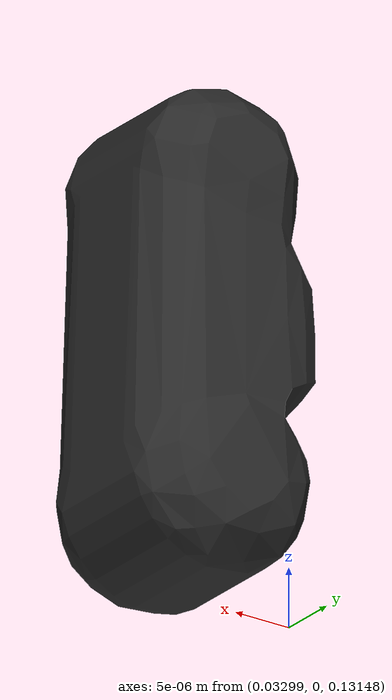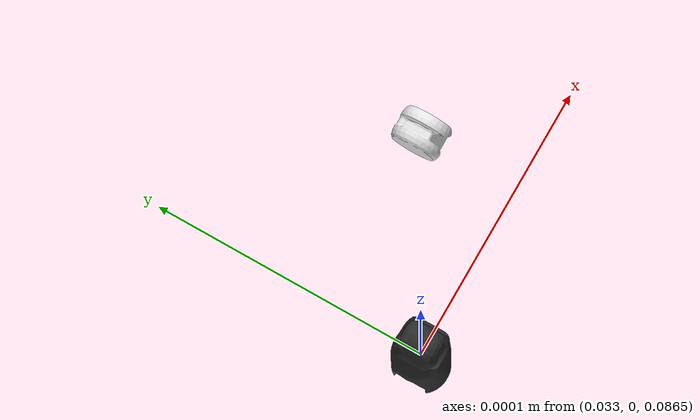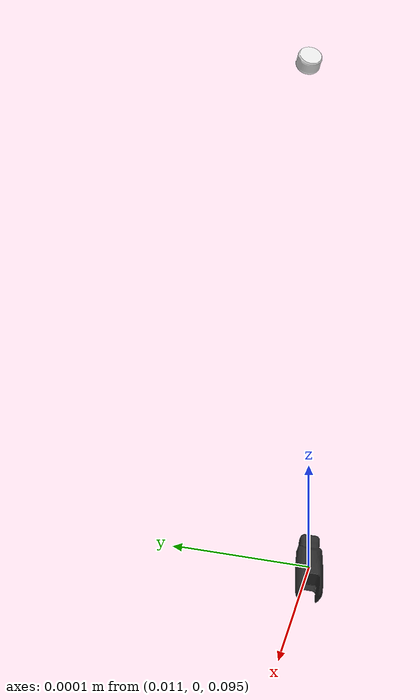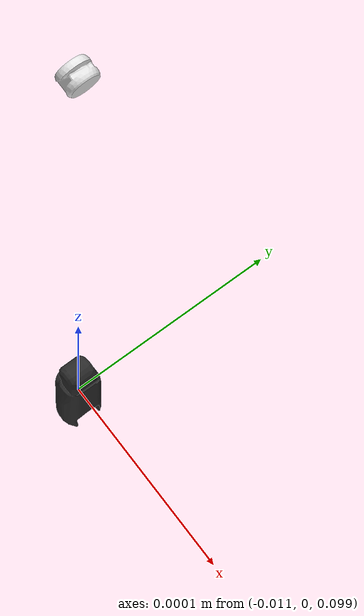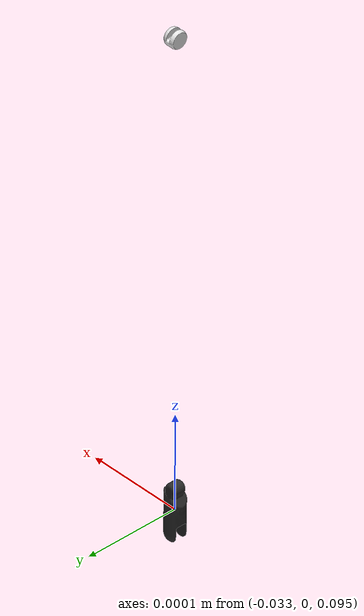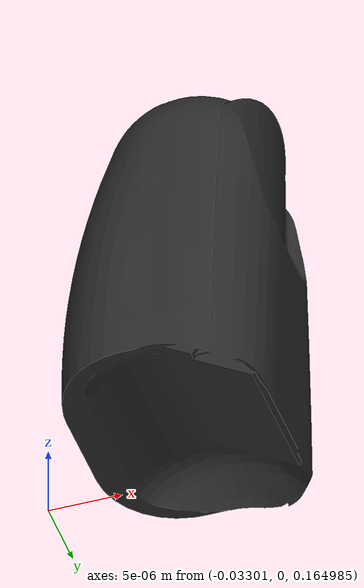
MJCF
<mujoco model="left_shadow_hand">
  <compiler angle="radian" meshdir="assets" autolimits="true"/>

  <option cone="elliptic" impratio="10"/>

  <default>
    <default class="left_hand">
      <mesh scale="0.001 0.001 0.001"/>
      <joint axis="1 0 0" damping="0.05" armature="0.0002" frictionloss="0.01"/>
      <position forcerange="-1 1"/>

      <default class="wrist">
        <joint damping="0.5"/>
        <default class="wrist_y">
          <joint axis="0 -1 0" range="-0.523599 0.174533"/>
          <position kp="10" ctrlrange="-0.523599 0.174533" forcerange="-10 10"/>
        </default>
        <default class="wrist_x">
          <joint range="-0.698132 0.488692"/>
          <position kp="8" ctrlrange="-0.698132 0.488692" forcerange="-5 5"/>
        </default>
      </default>

      <default class="thumb">
        <default class="thbase">
          <joint axis="0 0 1" range="-1.0472 1.0472"/>
          <position kp="0.4" ctrlrange="-1.0472 1.0472" forcerange="-3 3"/>
        </default>
        <default class="thproximal">
          <joint axis="-1 0 0" range="0 1.22173"/>
          <position ctrlrange="0 1.22173" forcerange="-2 2"/>
        </default>
        <default class="thhub">
          <joint axis="-1 0 0" range="-0.20944 0.20944"/>
          <position kp="0.5" ctrlrange="-0.20944 0.20944"/>
        </default>
        <default class="thmiddle">
          <joint axis="0 -1 0" range="-0.698132 0.698132"/>
          <position kp="1.5" ctrlrange="-0.698132 0.698132"/>
        </default>
        <default class="thdistal">
          <joint range="-0.261799 1.5708"/>
          <position ctrlrange="-0.261799 1.5708"/>
        </default>
      </default>

      <default class="metacarpal">
        <joint axis="0.573576 0 0.819152" range="0 0.785398"/>
        <position ctrlrange="0 0.785398"/>
      </default>
      <default class="knuckle">
        <joint axis="0 -1 0" range="-0.349066 0.349066"/>
        <position ctrlrange="-0.349066 0.349066"/>
      </default>
      <default class="proximal">
        <joint range="-0.261799 1.5708"/>
        <position ctrlrange="-0.261799 1.5708"/>
      </default>
      <default class="middle_distal">
        <joint range="0 1.5708"/>
        <position kp="0.5" ctrlrange="0 3.1415"/>
      </default>

      <default class="plastic">
        <geom solimp="0.5 0.99 0.0001" solref="0.005 1"/>
        <default class="plastic_visual">
          <geom type="mesh" material="black" contype="0" conaffinity="0" group="2"/>
        </default>
        <default class="plastic_collision">
          <geom group="3"/>
        </default>
        <default class="plastic_reference">
          <geom type="mesh" rgba="0 1 0 1" contype="0" conaffinity="0" group="3"/>
        </default>
      </default>
    </default>
  </default>

  <asset>
    <material name="black" specular="0.5" shininess="0.25" rgba="0.16355 0.16355 0.16355 1"/>
    <material name="gray" specular="0.0" shininess="0.25" rgba="0.80848 0.80848 0.80848 1"/>
    <material name="metallic" specular="0" shininess="0.25" rgba="0.9 0.9 0.9 1"/>

    <mesh class="left_hand" file="forearm_0.obj"/>
    <mesh class="left_hand" file="forearm_1.obj"/>
    <mesh class="left_hand" file="forearm_collision.obj"/>
    <mesh class="left_hand" file="wrist.obj" scale="-0.001 0.001 0.001"/>
    <mesh class="left_hand" file="palm.obj" scale="-0.001 0.001 0.001"/>
    <mesh class="left_hand" file="f_knuckle.obj"/>
    <mesh class="left_hand" file="f_proximal.obj"/>
    <mesh class="left_hand" file="f_middle.obj"/>
    <mesh class="left_hand" file="f_distal_pst.obj"/>
    <mesh class="left_hand" file="lf_metacarpal.obj" scale="-0.001 0.001 0.001"/>
    <mesh class="left_hand" file="th_proximal.obj"/>
    <mesh class="left_hand" file="th_middle.obj"/>
    <mesh class="left_hand" file="th_distal_pst.obj"/>
  </asset>

  <worldbody>
    <body name="lh_palm" >
      <body name="lh_palm_ref" quat="0 1 0 1">
        <geom quat="0 1 0 1" class="plastic_reference" mesh="palm"/>
      </body>
      <inertial mass="0.3" pos="0 0 0.035" quat="1 0 0 1" diaginertia="0.0005287 0.0003581 0.000191"/>
      <freejoint/>
      <geom class="plastic_visual" mesh="palm"/>
      <geom size="0.031 0.0035 0.049" pos="-0.011 0.0085 0.038" type="box" class="plastic_collision"/>
      <geom size="0.018 0.0085 0.049" pos="0.002 -0.0035 0.038" type="box" class="plastic_collision"/>
      <geom size="0.013 0.0085 0.005" pos="-0.029 -0.0035 0.082" type="box" class="plastic_collision"/>
      <geom size="0.013 0.007 0.009" pos="-0.0265 -0.001 0.07" quat="0.987241 0.0990545 0.0124467 -0.124052"
        type="box" class="plastic_collision"/>
      <geom size="0.0105 0.0135 0.0112" pos="-0.0315 -0.0085 0.001" type="box" class="plastic_collision"/>
      <geom size="0.011 0.0025 0.015" pos="-0.0125 -0.015 0.004" quat="-0.971338 0 0 -0.237703" type="box"
        class="plastic_collision"/>
      <geom size="0.009 0.012 0.002" pos="-0.011 0 0.089" type="box" class="plastic_collision"/>
      <geom size="0.01 0.012 0.02" pos="0.03 0 0.009" type="box" class="plastic_collision"/>
      <body name="lh_ffknuckle" pos="-0.033 0 0.095">
        <inertial mass="0.008" pos="0 0 0" quat="0.5 0.5 -0.5 0.5" diaginertia="3.2e-07 2.6e-07 2.6e-07"/>
        <joint name="lh_FFJ4" class="knuckle" axis="0 1 0"/>
        <geom pos="0 0 0.0005" class="plastic_visual" mesh="f_knuckle" material="metallic"/>
        <geom size="0.009 0.009" quat="1 0 1 0" type="cylinder" class="plastic_collision"/>
        <body name="lh_ffproximal">
          <inertial mass="0.03" pos="0 0 0.0225" quat="1 0 0 1" diaginertia="1e-05 9.8e-06 1.8e-06"/>
          <joint name="lh_FFJ3" class="proximal"/>
          <geom class="plastic_visual" mesh="f_proximal"/>
          <geom size="0.009 0.02" pos="0 0 0.025" type="capsule" class="plastic_collision"/>
          <body name="lh_ffmiddle" pos="0 0 0.045">
            <inertial mass="0.017" pos="0 0 0.0125" quat="1 0 0 1" diaginertia="2.7e-06 2.6e-06 8.7e-07"/>
            <joint name="lh_FFJ2" class="middle_distal"/>
            <geom class="plastic_visual" mesh="f_middle"/>
            <geom size="0.009 0.0125" pos="0 0 0.0125" type="capsule" class="plastic_collision"/>
            <body name="lh_ffdistal" pos="0 0 0.025">
              <inertial mass="0.013" pos="0 0 0.0130769" quat="1 0 0 1"
                diaginertia="1.28092e-06 1.12092e-06 5.3e-07"/>
              <joint name="lh_FFJ1" class="middle_distal"/>
              <geom class="plastic_visual" mesh="f_distal_pst"/>
              <geom class="plastic_collision" type="mesh" mesh="f_distal_pst"/>
            </body>
          </body>
        </body>
      </body>
      <body name="lh_mfknuckle" pos="-0.011 0 0.099">
        <inertial mass="0.008" pos="0 0 0" quat="0.5 0.5 -0.5 0.5" diaginertia="3.2e-07 2.6e-07 2.6e-07"/>
        <joint name="lh_MFJ4" class="knuckle" axis="0 1 0"/>
        <geom pos="0 0 0.0005" class="plastic_visual" mesh="f_knuckle" material="metallic"/>
        <geom size="0.009 0.009" quat="1 0 1 0" type="cylinder" class="plastic_collision"/>
        <body name="lh_mfproximal">
          <inertial mass="0.03" pos="0 0 0.0225" quat="1 0 0 1" diaginertia="1e-05 9.8e-06 1.8e-06"/>
          <joint name="lh_MFJ3" class="proximal"/>
          <geom class="plastic_visual" mesh="f_proximal"/>
          <geom size="0.009 0.02" pos="0 0 0.025" type="capsule" class="plastic_collision"/>
          <body name="lh_mfmiddle" pos="0 0 0.045">
            <inertial mass="0.017" pos="0 0 0.0125" quat="1 0 0 1" diaginertia="2.7e-06 2.6e-06 8.7e-07"/>
            <joint name="lh_MFJ2" class="middle_distal"/>
            <geom class="plastic_visual" mesh="f_middle"/>
            <geom size="0.009 0.0125" pos="0 0 0.0125" type="capsule" class="plastic_collision"/>
            <body name="lh_mfdistal" pos="0 0 0.025">
              <inertial mass="0.013" pos="0 0 0.0130769" quat="1 0 0 1"
                diaginertia="1.28092e-06 1.12092e-06 5.3e-07"/>
              <joint name="lh_MFJ1" class="middle_distal"/>
              <geom class="plastic_visual" mesh="f_distal_pst"/>
              <geom class="plastic_collision" type="mesh" mesh="f_distal_pst"/>
            </body>
          </body>
        </body>
      </body>
      <body name="lh_rfknuckle" pos="0.011 0 0.095">
        <inertial mass="0.008" pos="0 0 0" quat="0.5 0.5 -0.5 0.5" diaginertia="3.2e-07 2.6e-07 2.6e-07"/>
        <joint name="lh_RFJ4" class="knuckle"/>
        <geom pos="0 0 0.0005" class="plastic_visual" mesh="f_knuckle" material="metallic"/>
        <geom size="0.009 0.009" quat="1 0 1 0" type="cylinder" class="plastic_collision"/>
        <body name="lh_rfproximal">
          <inertial mass="0.03" pos="0 0 0.0225" quat="1 0 0 1" diaginertia="1e-05 9.8e-06 1.8e-06"/>
          <joint name="lh_RFJ3" class="proximal"/>
          <geom class="plastic_visual" mesh="f_proximal"/>
          <geom size="0.009 0.02" pos="0 0 0.025" type="capsule" class="plastic_collision"/>
          <body name="lh_rfmiddle" pos="0 0 0.045">
            <inertial mass="0.017" pos="0 0 0.0125" quat="1 0 0 1" diaginertia="2.7e-06 2.6e-06 8.7e-07"/>
            <joint name="lh_RFJ2" class="middle_distal"/>
            <geom class="plastic_visual" mesh="f_middle"/>
            <geom size="0.009 0.0125" pos="0 0 0.0125" type="capsule" class="plastic_collision"/>
            <body name="lh_rfdistal" pos="0 0 0.025">
              <inertial mass="0.013" pos="0 0 0.0130769" quat="1 0 0 1"
                diaginertia="1.28092e-06 1.12092e-06 5.3e-07"/>
              <joint name="lh_RFJ1" class="middle_distal"/>
              <geom class="plastic_visual" mesh="f_distal_pst"/>
              <geom class="plastic_collision" type="mesh" mesh="f_distal_pst"/>
            </body>
          </body>
        </body>
      </body>
      <body name="lh_lfmetacarpal" pos="0.033 0 0.02071">
        <inertial mass="0.03" pos="0 0 0.04" quat="1 0 0 1" diaginertia="1.638e-05 1.45e-05 4.272e-06"/>
        <joint name="lh_LFJ5" class="metacarpal" axis="0.573576 0 -0.819152"/>
        <geom class="plastic_visual" mesh="lf_metacarpal"/>
        <geom size="0.011 0.012 0.025" pos="-0.002 0 0.033" type="box" class="plastic_collision"/>
        <body name="lh_lfknuckle" pos="0 0 0.06579">
          <inertial mass="0.008" pos="0 0 0" quat="0.5 0.5 -0.5 0.5" diaginertia="3.2e-07 2.6e-07 2.6e-07"/>
          <joint name="lh_LFJ4" class="knuckle"/>
          <geom pos="0 0 0.0005" class="plastic_visual" mesh="f_knuckle" material="metallic"/>
          <geom size="0.009 0.009" quat="1 0 1 0" type="cylinder" class="plastic_collision"/>
          <body name="lh_lfproximal">
            <inertial mass="0.03" pos="0 0 0.0225" quat="1 0 0 1" diaginertia="1e-05 9.8e-06 1.8e-06"/>
            <joint name="lh_LFJ3" class="proximal"/>
            <geom class="plastic_visual" mesh="f_proximal"/>
            <geom size="0.009 0.02" pos="0 0 0.025" type="capsule" class="plastic_collision"/>
            <body name="lh_lfmiddle" pos="0 0 0.045">
              <inertial mass="0.017" pos="0 0 0.0125" quat="1 0 0 1" diaginertia="2.7e-06 2.6e-06 8.7e-07"/>
              <joint name="lh_LFJ2" class="middle_distal"/>
              <geom class="plastic_visual" mesh="f_middle"/>
              <geom size="0.009 0.0125" pos="0 0 0.0125" type="capsule" class="plastic_collision"/>
              <body name="lh_lfdistal" pos="0 0 0.025">
                <inertial mass="0.013" pos="0 0 0.0130769" quat="1 0 0 1"
                  diaginertia="1.28092e-06 1.12092e-06 5.3e-07"/>
                <joint name="lh_LFJ1" class="middle_distal"/>
                <geom class="plastic_visual" mesh="f_distal_pst"/>
                <geom class="plastic_collision" type="mesh" mesh="f_distal_pst"/>
              </body>
            </body>
          </body>
        </body>
      </body>
      <body name="lh_thbase" pos="-0.034 -0.00858 0.029" quat="0 -0.382683 0 0.92388">
        <inertial mass="0.01" pos="0 0 0" diaginertia="1.6e-07 1.6e-07 1.6e-07"/>
        <joint name="lh_THJ5" class="thbase"/>
        <geom class="plastic_collision" size="0.013"/>
        <body name="lh_thproximal">
          <inertial mass="0.04" pos="0 0 0.019" diaginertia="1.36e-05 1.36e-05 3.13e-06"/>
          <joint name="lh_THJ4" class="thproximal"/>
          <geom class="plastic_visual" mesh="th_proximal"/>
          <geom class="plastic_collision" size="0.0105 0.009" pos="0 0 0.02" type="capsule"/>
          <body name="lh_thhub" pos="0 0 0.038">
            <inertial mass="0.005" pos="0 0 0" diaginertia="1e-06 1e-06 3e-07"/>
            <joint name="lh_THJ3" class="thhub"/>
            <geom size="0.011" class="plastic_collision"/>
            <body name="lh_thmiddle">
              <inertial mass="0.02" pos="0 0 0.016" diaginertia="5.1e-06 5.1e-06 1.21e-06"/>
              <joint name="lh_THJ2" class="thmiddle"/>
              <geom class="plastic_visual" mesh="th_middle"/>
              <geom size="0.009 0.009" pos="0 0 0.012" type="capsule" class="plastic_collision"/>
              <geom size="0.01" pos="0 0 0.03" class="plastic_collision"/>
              <body name="lh_thdistal" pos="0 0 0.032" quat="1 0 0 -1">
                <inertial mass="0.017" pos="0 0 0.0145588" quat="1 0 0 1"
                  diaginertia="2.37794e-06 2.27794e-06 1e-06"/>
                <joint name="lh_THJ1" class="thdistal"/>
                <geom class="plastic_visual" mesh="th_distal_pst"/>
                <geom class="plastic_collision" type="mesh" mesh="th_distal_pst"/>
              </body>
            </body>
          </body>
        </body>
      </body>
    </body>
  </worldbody>

  <contact>
    <exclude body1="lh_thproximal" body2="lh_thmiddle"/>
  </contact>

  <actuator>
    <position name="lh_THJ5_actuator" joint="lh_THJ5" class="thbase"/>
    <position name="lh_THJ4_actuator" joint="lh_THJ4" class="thproximal"/>
    <position name="lh_THJ3_actuator" joint="lh_THJ3" class="thhub"/>
    <position name="lh_THJ2_actuator" joint="lh_THJ2" class="thmiddle"/>
    <position name="lh_THJ1_actuator" joint="lh_THJ1" class="thdistal"/>
    <position name="lh_FFJ4_actuator" joint="lh_FFJ4" class="knuckle"/>
    <position name="lh_FFJ3_actuator" joint="lh_FFJ3" class="proximal"/>
    <position name="lh_FFJ2_actuator" joint="lh_FFJ2" class="middle_distal"/>
    <position name="lh_FFJ1_actuator" joint="lh_FFJ1" class="middle_distal"/>
    <position name="lh_MFJ4_actuator" joint="lh_MFJ4" class="knuckle"/>
    <position name="lh_MFJ3_actuator" joint="lh_MFJ3" class="proximal"/>
    <position name="lh_MFJ2_actuator" joint="lh_MFJ2" class="middle_distal"/>
    <position name="lh_MFJ1_actuator" joint="lh_MFJ1" class="middle_distal"/>
    <position name="lh_RFJ4_actuator" joint="lh_RFJ4" class="knuckle"/>
    <position name="lh_RFJ3_actuator" joint="lh_RFJ3" class="proximal"/>
    <position name="lh_RFJ2_actuator" joint="lh_RFJ2" class="middle_distal"/>
    <position name="lh_RFJ1_actuator" joint="lh_RFJ1" class="middle_distal"/>
    <position name="lh_LFJ5_actuator" joint="lh_LFJ5" class="metacarpal"/>
    <position name="lh_LFJ4_actuator" joint="lh_LFJ4" class="knuckle"/>
    <position name="lh_LFJ3_actuator" joint="lh_LFJ3" class="proximal"/>
    <position name="lh_LFJ2_actuator" joint="lh_LFJ2" class="middle_distal"/>
    <position name="lh_LFJ1_actuator" joint="lh_LFJ1" class="middle_distal"/>
  </actuator>
</mujoco>
